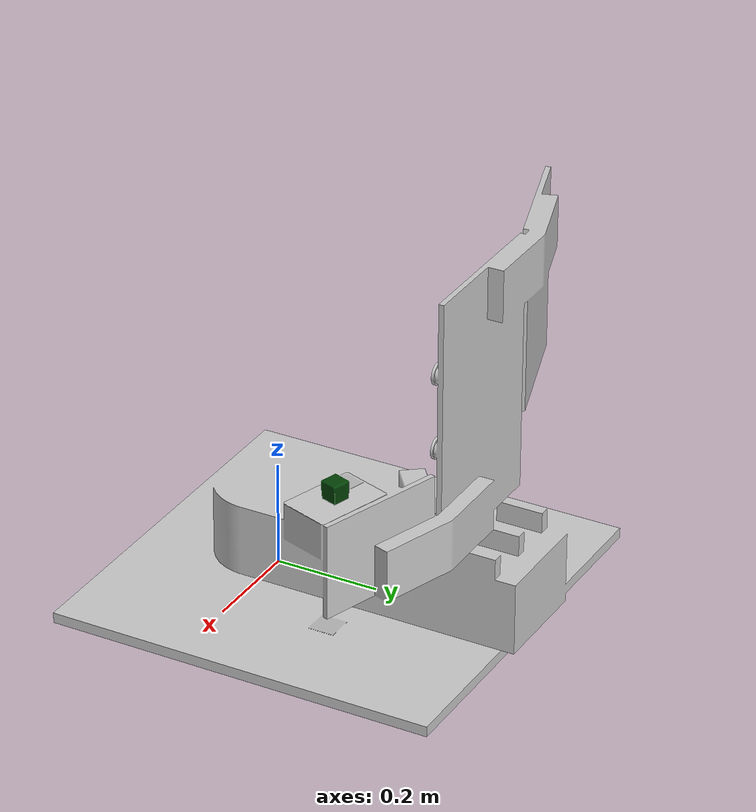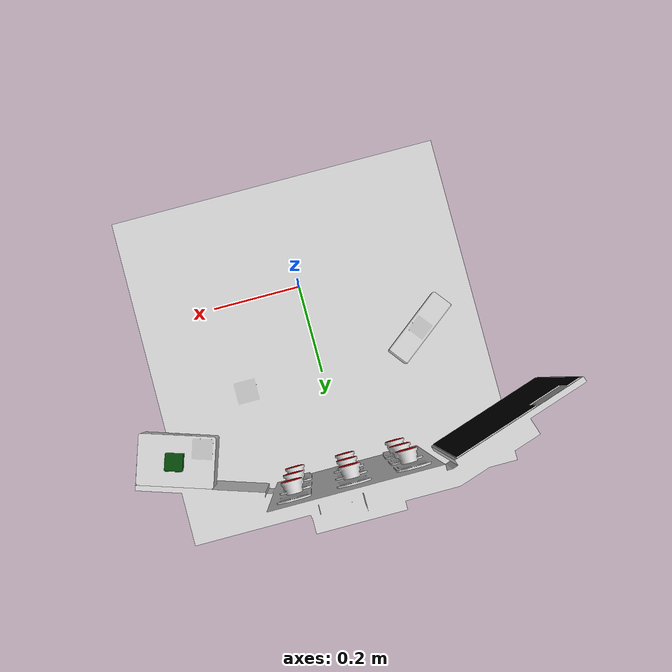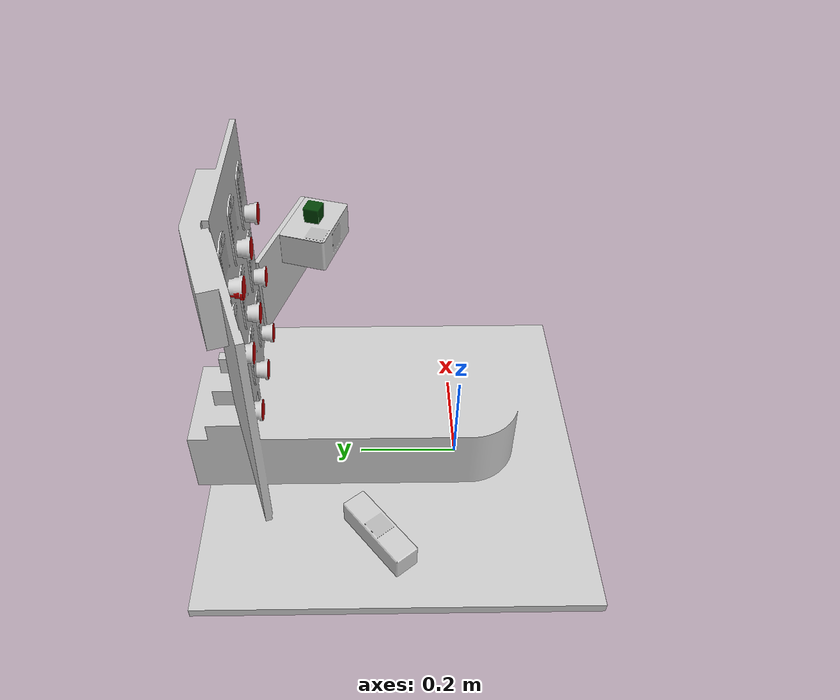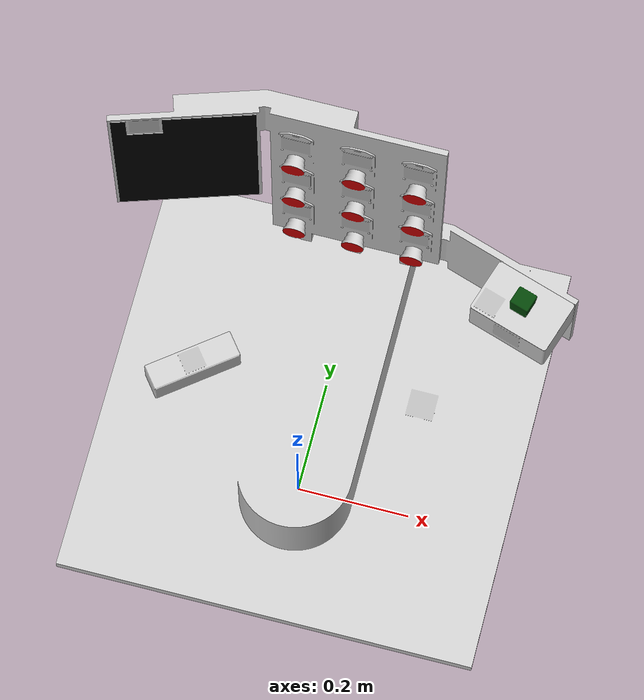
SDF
<sdf version="1.6">
 <world name="sim_erc">
  <light name="sun" type="directional">
   <pose>0 0 10 0 -0 0</pose>
   <diffuse>0.8 0.8 0.8 1</diffuse>
   <specular>0.2 0.2 0.2 1</specular>
   <attenuation>
    <range>1000</range>
    <constant>0.9</constant>
    <linear>0.01</linear>
    <quadratic>0.001</quadratic>
   </attenuation>
   <direction>-0.5 0.1 -0.9</direction>
  </light>
  <gravity>0 0 -9.8</gravity>
  <magnetic_field>6e-06 2.3e-05 -4.2e-05</magnetic_field>
  <atmosphere type="adiabatic"/>
  <physics name="default_physics" default="0" type="ode">
   <max_step_size>0.001</max_step_size>
   <real_time_factor>1</real_time_factor>
   <real_time_update_rate>1000</real_time_update_rate>
  </physics>
  <scene><ambient>0.4 0.4 0.4 1</ambient><background>0.7 0.7 0.7 1</background><shadows>1</shadows></scene>
  <audio><device>default</device></audio>
  <spherical_coordinates>
   <surface_model>EARTH_WGS84</surface_model>
   <latitude_deg>0</latitude_deg>
   <longitude_deg>0</longitude_deg>
   <elevation>0</elevation>
   <heading_deg>0</heading_deg>
  </spherical_coordinates>
  <model name="environment_erc">
   <link name="environment_0">
    <inertial>
     <mass>1</mass>
     <inertia>
      <ixx>0.166667</ixx>
      <ixy>0</ixy>
      <ixz>0</ixz>
      <iyy>0.166667</iyy>
      <iyz>0</iyz>
      <izz>0.166667</izz>
     </inertia>
    </inertial>
    <pose>0 0.4 0.29 -3.14159 0 0</pose>
    <visual name="visual">
     <geometry><mesh><uri>model://environment/environment.dae</uri><scale>1 1 1</scale></mesh></geometry>
    </visual>
   </link>
   <static>1</static>
   <pose>0 -0 0.16 0 -0 0</pose>
  </model>
  <model name="imu_module">
   <link name="imu_0">
    <inertial>
     <mass>1</mass>
     <inertia>
      <ixx>0.166667</ixx>
      <ixy>0</ixy>
      <ixz>0</ixz>
      <iyy>0.166667</iyy>
      <iyz>0</iyz>
      <izz>0.166667</izz>
     </inertia>
    </inertial>
    <pose>0 -0 -0.02482 0 -0 -1.5708</pose>
    <visual name="visual">
     <geometry><mesh><uri>model://imu_module/imu_module.dae</uri><scale>1 1 1</scale></mesh></geometry>
    </visual>
    <collision name="collision">
     <pose>0 0 -0.0008 0 -0 0</pose>
     <geometry><box><size>0.051 0.165 0.052</size></box></geometry>
     <surface>
      <friction>
       <ode><mu>1</mu><mu2>1</mu2><fdir1>0 0 0</fdir1><slip1>0</slip1><slip2>0</slip2></ode>
       <torsional>
        <coefficient>1</coefficient>
        <patch_radius>0</patch_radius>
        <surface_radius>0</surface_radius>
        <use_patch_radius>1</use_patch_radius>
        <ode><slip>0</slip></ode>
       </torsional>
      </friction>
      <bounce><restitution_coefficient>0</restitution_coefficient><threshold>1e+06</threshold></bounce>
      <contact>
       <collide_without_contact>0</collide_without_contact>
       <collide_without_contact_bitmask>1</collide_without_contact_bitmask>
       <collide_bitmask>1</collide_bitmask>
       <ode>
        <soft_cfm>0</soft_cfm>
        <soft_erp>0.2</soft_erp>
        <kp>1e+13</kp>
        <kd>1</kd>
        <max_vel>0.01</max_vel>
        <min_depth>0</min_depth>
       </ode>
       <bullet>
        <split_impulse>1</split_impulse>
        <split_impulse_penetration_threshold>-0.01</split_impulse_penetration_threshold>
        <soft_cfm>0</soft_cfm>
        <soft_erp>0.2</soft_erp>
        <kp>1e+13</kp>
        <kd>1</kd>
       </bullet>
      </contact>
     </surface>
    </collision>
   </link>
   <static>0</static>
   <pose>-0.23624 0.161996 0.071628 0 -0 0.661705</pose>
  </model>
  <model name="window_cover">
   <link name="cover_0">
    <inertial>
     <mass>1</mass>
     <inertia>
      <ixx>0.166667</ixx>
      <ixy>0</ixy>
      <ixz>0</ixz>
      <iyy>0.166667</iyy>
      <iyz>0</iyz>
      <izz>0.166667</izz>
     </inertia>
    </inertial>
    <pose>0 -0 0 1.5708 -0 0</pose>
    <visual name="visual">
     <geometry><mesh><uri>model://window_cover/window_cover.dae</uri><scale>1 1 1</scale></mesh></geometry>
    </visual>
    <collision name="collision">
     <geometry><mesh><uri>model://window_cover/window_cover.dae</uri><scale>1 1 1</scale></mesh></geometry>
     <surface>
      <friction>
       <ode><mu>1</mu><mu2>1</mu2><fdir1>0 0 0</fdir1><slip1>0</slip1><slip2>0</slip2></ode>
       <torsional>
        <coefficient>1</coefficient>
        <patch_radius>0</patch_radius>
        <surface_radius>0</surface_radius>
        <use_patch_radius>1</use_patch_radius>
        <ode><slip>0</slip></ode>
       </torsional>
      </friction>
      <bounce><restitution_coefficient>0</restitution_coefficient><threshold>1e+06</threshold></bounce>
      <contact>
       <collide_without_contact>0</collide_without_contact>
       <collide_without_contact_bitmask>1</collide_without_contact_bitmask>
       <collide_bitmask>1</collide_bitmask>
       <ode>
        <soft_cfm>0</soft_cfm>
        <soft_erp>0.2</soft_erp>
        <kp>1e+13</kp>
        <kd>1</kd>
        <max_vel>0.01</max_vel>
        <min_depth>0</min_depth>
       </ode>
       <bullet>
        <split_impulse>1</split_impulse>
        <split_impulse_penetration_threshold>-0.01</split_impulse_penetration_threshold>
        <soft_cfm>0</soft_cfm>
        <soft_erp>0.2</soft_erp>
        <kp>1e+13</kp>
        <kd>1</kd>
       </bullet>
      </contact>
     </surface>
    </collision>
   </link>
   <static>0</static>
   <pose>0.317147 0.295284 0.380597 -0.006096 0.003779 -0.310381</pose>
  </model>
  <model name="sim_erc2">
   <link name="link_4">
    <inertial>
     <mass>1</mass>
     <inertia>
      <ixx>0.166667</ixx>
      <ixy>0</ixy>
      <ixz>0</ixz>
      <iyy>0.166667</iyy>
      <iyz>0</iyz>
      <izz>0.166667</izz>
     </inertia>
    </inertial>
    <pose>-0.108 0.0075 0.004 0 -0 0</pose>
    <visual name="visual">
     <geometry><mesh><uri>model://environment/solid_base.dae</uri><scale>1 1 1</scale></mesh></geometry>
     <material>
      <lighting>1</lighting>
      <script><uri>file://media/materials/scripts/gazebo.material</uri><name>Gazebo/Grey</name></script>
     </material>
     <transparency>1</transparency>
    </visual>
    <collision name="collision">
     <geometry><mesh><uri>model://environment/solid_base.dae</uri><scale>1 1 1</scale></mesh></geometry>
     <surface>
      <friction>
       <ode><mu>1</mu><mu2>1</mu2><fdir1>0 0 0</fdir1><slip1>0</slip1><slip2>0</slip2></ode>
       <torsional>
        <coefficient>1</coefficient>
        <patch_radius>0</patch_radius>
        <surface_radius>0</surface_radius>
        <use_patch_radius>1</use_patch_radius>
        <ode><slip>0</slip></ode>
       </torsional>
      </friction>
      <bounce><restitution_coefficient>0</restitution_coefficient><threshold>1e+06</threshold></bounce>
      <contact>
       <collide_without_contact>0</collide_without_contact>
       <collide_without_contact_bitmask>1</collide_without_contact_bitmask>
       <collide_bitmask>1</collide_bitmask>
       <ode>
        <soft_cfm>0</soft_cfm>
        <soft_erp>0.2</soft_erp>
        <kp>1e+13</kp>
        <kd>1</kd>
        <max_vel>0.01</max_vel>
        <min_depth>0</min_depth>
       </ode>
       <bullet>
        <split_impulse>1</split_impulse>
        <split_impulse_penetration_threshold>-0.01</split_impulse_penetration_threshold>
        <soft_cfm>0</soft_cfm>
        <soft_erp>0.2</soft_erp>
        <kp>1e+13</kp>
        <kd>1</kd>
       </bullet>
      </contact>
     </surface>
    </collision>
   </link>
   <link name="link_6">
    <inertial>
     <mass>1</mass>
     <inertia>
      <ixx>0.166667</ixx>
      <ixy>0</ixy>
      <ixz>0</ixz>
      <iyy>0.166667</iyy>
      <iyz>0</iyz>
      <izz>0.166667</izz>
     </inertia>
    </inertial>
    <pose>-0.107282 0.089314 0.081293 0 -0 0</pose>
    <visual name="visual">
     <geometry><mesh><uri>model://environment/solid_chassis.dae</uri><scale>1 1 1</scale></mesh></geometry>
     <material>
      <lighting>1</lighting>
      <script><uri>file://media/materials/scripts/gazebo.material</uri><name>Gazebo/Grey</name></script>
     </material>
     <transparency>1</transparency>
    </visual>
    <collision name="collision">
     <geometry><mesh><uri>model://environment/solid_chassis.dae</uri><scale>1 1 1</scale></mesh></geometry>
     <surface>
      <friction>
       <ode><mu>1</mu><mu2>1</mu2><fdir1>0 0 0</fdir1><slip1>0</slip1><slip2>0</slip2></ode>
       <torsional>
        <coefficient>1</coefficient>
        <patch_radius>0</patch_radius>
        <surface_radius>0</surface_radius>
        <use_patch_radius>1</use_patch_radius>
        <ode><slip>0</slip></ode>
       </torsional>
      </friction>
      <bounce><restitution_coefficient>0</restitution_coefficient><threshold>1e+06</threshold></bounce>
      <contact>
       <collide_without_contact>0</collide_without_contact>
       <collide_without_contact_bitmask>1</collide_without_contact_bitmask>
       <collide_bitmask>1</collide_bitmask>
       <ode>
        <soft_cfm>0</soft_cfm>
        <soft_erp>0.2</soft_erp>
        <kp>1e+13</kp>
        <kd>1</kd>
        <max_vel>0.01</max_vel>
        <min_depth>0</min_depth>
       </ode>
       <bullet>
        <split_impulse>1</split_impulse>
        <split_impulse_penetration_threshold>-0.01</split_impulse_penetration_threshold>
        <soft_cfm>0</soft_cfm>
        <soft_erp>0.2</soft_erp>
        <kp>1e+13</kp>
        <kd>1</kd>
       </bullet>
      </contact>
     </surface>
    </collision>
   </link>
   <link name="link_8">
    <inertial>
     <mass>0.000470046</mass>
     <inertia>
      <ixx>4.34391e-07</ixx>
      <ixy>0</ixy>
      <ixz>0</ixz>
      <iyy>8.83855e-07</iyy>
      <iyz>0</iyz>
      <izz>1.23862e-06</izz>
     </inertia>
    </inertial>
    <pose>0.210535 0.175827 0.349129 0 0 -0.335226</pose>
    <visual name="visual">
     <geometry><box><size>0.146792 0.100366 0.031882</size></box></geometry>
     <material>
      <lighting>1</lighting>
      <script><uri>file://media/materials/scripts/gazebo.material</uri><name>Gazebo/Grey</name></script>
     </material>
     <transparency>1</transparency>
    </visual>
    <collision name="collision">
     <geometry><box><size>0.146792 0.100366 0.031882</size></box></geometry>
     <surface>
      <friction>
       <ode><mu>1</mu><mu2>1</mu2><fdir1>0 0 0</fdir1><slip1>0</slip1><slip2>0</slip2></ode>
       <torsional>
        <coefficient>1</coefficient>
        <patch_radius>0</patch_radius>
        <surface_radius>0</surface_radius>
        <use_patch_radius>1</use_patch_radius>
        <ode><slip>0</slip></ode>
       </torsional>
      </friction>
      <bounce><restitution_coefficient>0</restitution_coefficient><threshold>1e+06</threshold></bounce>
      <contact>
       <collide_without_contact>0</collide_without_contact>
       <collide_without_contact_bitmask>1</collide_without_contact_bitmask>
       <collide_bitmask>1</collide_bitmask>
       <ode>
        <soft_cfm>0</soft_cfm>
        <soft_erp>0.2</soft_erp>
        <kp>1e+13</kp>
        <kd>1</kd>
        <max_vel>0.01</max_vel>
        <min_depth>0</min_depth>
       </ode>
       <bullet>
        <split_impulse>1</split_impulse>
        <split_impulse_penetration_threshold>-0.01</split_impulse_penetration_threshold>
        <soft_cfm>0</soft_cfm>
        <soft_erp>0.2</soft_erp>
        <kp>1e+13</kp>
        <kd>1</kd>
       </bullet>
      </contact>
     </surface>
    </collision>
   </link>
   <static>1</static>
   <pose>0.107282 0.122743 0.010717 0 -0 0</pose>
  </model>
  <model name="sim_erc2">
   <pose>0.107282 0.122743 0.010717 0 -0 0</pose>
   <scale>1 1 1</scale>
   <link name="link_4">
    <pose>0.00403 -0.142399 -0.419705 0 -0 0</pose>
    <velocity>0 0 0 0 -0 0</velocity>
    <acceleration>0 0 0 0 -0 0</acceleration>
    <wrench>0 0 0 0 -0 0</wrench>
   </link>
   <link name="link_6">
    <pose>0 0.212057 0.09201 0 -0 0</pose>
    <velocity>0 0 0 0 -0 0</velocity>
    <acceleration>0 0 0 0 -0 0</acceleration>
    <wrench>0 0 0 0 -0 0</wrench>
   </link>
   <link name="link_8">
    <pose>0.317817 0.29857 0.359846 0 0 -0.335226</pose>
    <velocity>0 0 0 0 -0 0</velocity>
    <acceleration>0 0 0 0 -0 0</acceleration>
    <wrench>0 0 0 0 -0 0</wrench>
   </link>
  </model>
 </world>
</sdf>
